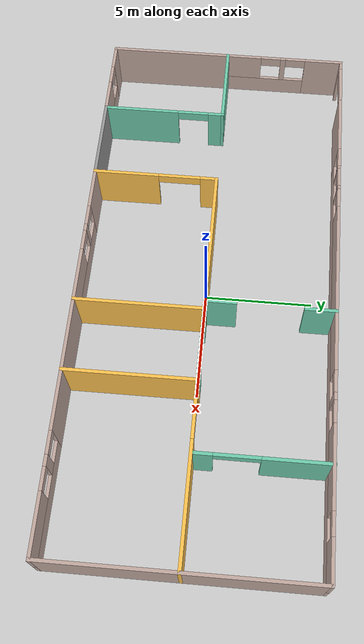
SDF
<sdf version="1.6">
 <world name="default">
  <model name="ground_plane">
   <static>1</static>
   <link name="link">
    <collision name="collision">
     <geometry><plane><normal>0 0 1</normal><size>100 100</size></plane></geometry>
     <surface><friction><ode><mu>100</mu><mu2>50</mu2></ode></friction></surface>
    </collision>
    <visual name="visual">
     <cast_shadows>0</cast_shadows>
     <geometry><plane><normal>0 0 1</normal><size>100 100</size></plane></geometry>
     <material>
      <script><uri>file://media/materials/scripts/gazebo.material</uri><name>Gazebo/Grey</name></script>
     </material>
    </visual>
   </link>
  </model>
  <model name="Building">
   <pose>0.0388 0.08075 0 0 -0 0</pose>
   <link name="Wall_0">
    <pose>-12.8748 2.91767 0 0 0 -1.5708</pose>
    <visual name="Wall_0_Visual_0">
     <pose>-2.03434 0 1.25 0 -0 0</pose>
     <geometry><box><size>1.93132 0.15 2.5</size></box></geometry>
     <material>
      <script><uri>file://media/materials/scripts/gazebo.material</uri><name>Gazebo/Grey</name></script>
      <ambient>0.760784 0.662745 0.627451 1</ambient>
     </material>
    </visual>
    <collision name="Wall_0_Collision_0">
     <geometry><box><size>1.93132 0.15 2.5</size></box></geometry>
     <pose>-2.03434 0 1.25 0 -0 0</pose>
    </collision>
    <visual name="Wall_0_Visual_1">
     <pose>0.965658 0 0.5 0 -0 0</pose>
     <geometry><box><size>4.06868 0.15 1</size></box></geometry>
     <material>
      <script><uri>file://media/materials/scripts/gazebo.material</uri><name>Gazebo/Grey</name></script>
      <ambient>0.760784 0.662745 0.627451 1</ambient>
     </material>
    </visual>
    <collision name="Wall_0_Collision_1">
     <geometry><box><size>4.06868 0.15 1</size></box></geometry>
     <pose>0.965658 0 0.5 0 -0 0</pose>
    </collision>
    <visual name="Wall_0_Visual_2">
     <pose>0.061576 0 1.75 0 -0 0</pose>
     <geometry><box><size>0.26052 0.15 1.5</size></box></geometry>
     <material>
      <script><uri>file://media/materials/scripts/gazebo.material</uri><name>Gazebo/Grey</name></script>
      <ambient>0.760784 0.662745 0.627451 1</ambient>
     </material>
    </visual>
    <collision name="Wall_0_Collision_2">
     <geometry><box><size>0.26052 0.15 1.5</size></box></geometry>
     <pose>0.061576 0 1.75 0 -0 0</pose>
    </collision>
    <visual name="Wall_0_Visual_3">
     <pose>2.09592 0 1.75 0 -0 0</pose>
     <geometry><box><size>1.80816 0.15 1.5</size></box></geometry>
     <material>
      <script><uri>file://media/materials/scripts/gazebo.material</uri><name>Gazebo/Grey</name></script>
      <ambient>0.760784 0.662745 0.627451 1</ambient>
     </material>
    </visual>
    <collision name="Wall_0_Collision_3">
     <geometry><box><size>1.80816 0.15 1.5</size></box></geometry>
     <pose>2.09592 0 1.75 0 -0 0</pose>
    </collision>
    <visual name="Wall_0_Visual_4">
     <pose>-0.568684 0 2.25 0 -0 0</pose>
     <geometry><box><size>1 0.15 0.5</size></box></geometry>
     <material>
      <script><uri>file://media/materials/scripts/gazebo.material</uri><name>Gazebo/Grey</name></script>
      <ambient>0.760784 0.662745 0.627451 1</ambient>
     </material>
    </visual>
    <collision name="Wall_0_Collision_4">
     <geometry><box><size>1 0.15 0.5</size></box></geometry>
     <pose>-0.568684 0 2.25 0 -0 0</pose>
    </collision>
    <visual name="Wall_0_Visual_5">
     <pose>0.691837 0 2.25 0 -0 0</pose>
     <geometry><box><size>1 0.15 0.5</size></box></geometry>
     <material>
      <script><uri>file://media/materials/scripts/gazebo.material</uri><name>Gazebo/Grey</name></script>
      <ambient>0.760784 0.662745 0.627451 1</ambient>
     </material>
    </visual>
    <collision name="Wall_0_Collision_5">
     <geometry><box><size>1 0.15 0.5</size></box></geometry>
     <pose>0.691837 0 2.25 0 -0 0</pose>
    </collision>
   </link>
   <link name="Wall_10">
    <collision name="Wall_10_Collision">
     <geometry><box><size>4 0.15 2.5</size></box></geometry>
     <pose>0 0 1.25 0 -0 0</pose>
    </collision>
    <visual name="Wall_10_Visual">
     <pose>0 0 1.25 0 -0 0</pose>
     <geometry><box><size>4 0.15 2.5</size></box></geometry>
     <material>
      <script><uri>file://media/materials/scripts/gazebo.material</uri><name>Gazebo/Grey</name></script>
      <ambient>1 1 1 1</ambient>
     </material>
    </visual>
    <pose>-7.1 -5.85736 0 0 0 -1.2e-05</pose>
   </link>
   <link name="Wall_12">
    <pose>-5.175 -2.93236 0 0 -0 1.57074</pose>
    <visual name="Wall_12_Visual_0">
     <pose>-1.42698 0 1.25 0 -0 0</pose>
     <geometry><box><size>3.14604 0.15 2.5</size></box></geometry>
     <material>
      <script><uri>file://media/materials/scripts/gazebo.material</uri><name>Gazebo/Grey</name></script>
      <ambient>1 0.764706 0.305882 1</ambient>
     </material>
    </visual>
    <collision name="Wall_12_Collision_0">
     <geometry><box><size>3.14604 0.15 2.5</size></box></geometry>
     <pose>-1.42698 0 1.25 0 -0 0</pose>
    </collision>
    <visual name="Wall_12_Visual_1">
     <pose>2.57302 0 1.25 0 -0 0</pose>
     <geometry><box><size>0.853958 0.15 2.5</size></box></geometry>
     <material>
      <script><uri>file://media/materials/scripts/gazebo.material</uri><name>Gazebo/Grey</name></script>
      <ambient>1 0.764706 0.305882 1</ambient>
     </material>
    </visual>
    <collision name="Wall_12_Collision_1">
     <geometry><box><size>0.853958 0.15 2.5</size></box></geometry>
     <pose>2.57302 0 1.25 0 -0 0</pose>
    </collision>
    <visual name="Wall_12_Visual_2">
     <pose>1.14604 0 2.25 0 -0 0</pose>
     <geometry><box><size>2 0.15 0.5</size></box></geometry>
     <material>
      <script><uri>file://media/materials/scripts/gazebo.material</uri><name>Gazebo/Grey</name></script>
      <ambient>1 0.764706 0.305882 1</ambient>
     </material>
    </visual>
    <collision name="Wall_12_Collision_2">
     <geometry><box><size>2 0.15 0.5</size></box></geometry>
     <pose>1.14604 0 2.25 0 -0 0</pose>
    </collision>
   </link>
   <link name="Wall_14">
    <pose>-1.75018 -5.85738 0 0 -0 0</pose>
    <visual name="Wall_14_Visual_0">
     <pose>-2.46755 0 1.25 0 -0 0</pose>
     <geometry><box><size>2.0649 0.15 2.5</size></box></geometry>
     <material>
      <script><uri>file://media/materials/scripts/gazebo.material</uri><name>Gazebo/Grey</name></script>
      <ambient>0.760784 0.662745 0.627451 1</ambient>
     </material>
    </visual>
    <collision name="Wall_14_Collision_0">
     <geometry><box><size>2.0649 0.15 2.5</size></box></geometry>
     <pose>-2.46755 0 1.25 0 -0 0</pose>
    </collision>
    <visual name="Wall_14_Visual_1">
     <pose>1.03245 0 0.5 0 -0 0</pose>
     <geometry><box><size>4.93509 0.15 1</size></box></geometry>
     <material>
      <script><uri>file://media/materials/scripts/gazebo.material</uri><name>Gazebo/Grey</name></script>
      <ambient>0.760784 0.662745 0.627451 1</ambient>
     </material>
    </visual>
    <collision name="Wall_14_Collision_1">
     <geometry><box><size>4.93509 0.15 1</size></box></geometry>
     <pose>1.03245 0 0.5 0 -0 0</pose>
    </collision>
    <visual name="Wall_14_Visual_2">
     <pose>-0.267578 0 1.75 0 -0 0</pose>
     <geometry><box><size>0.335034 0.15 1.5</size></box></geometry>
     <material>
      <script><uri>file://media/materials/scripts/gazebo.material</uri><name>Gazebo/Grey</name></script>
      <ambient>0.760784 0.662745 0.627451 1</ambient>
     </material>
    </visual>
    <collision name="Wall_14_Collision_2">
     <geometry><box><size>0.335034 0.15 1.5</size></box></geometry>
     <pose>-0.267578 0 1.75 0 -0 0</pose>
    </collision>
    <visual name="Wall_14_Visual_3">
     <pose>2.19997 0 1.75 0 -0 0</pose>
     <geometry><box><size>2.60006 0.15 1.5</size></box></geometry>
     <material>
      <script><uri>file://media/materials/scripts/gazebo.material</uri><name>Gazebo/Grey</name></script>
      <ambient>0.760784 0.662745 0.627451 1</ambient>
     </material>
    </visual>
    <collision name="Wall_14_Collision_3">
     <geometry><box><size>2.60006 0.15 1.5</size></box></geometry>
     <pose>2.19997 0 1.75 0 -0 0</pose>
    </collision>
    <visual name="Wall_14_Visual_4">
     <pose>-0.935095 0 2.25 0 -0 0</pose>
     <geometry><box><size>1 0.15 0.5</size></box></geometry>
     <material>
      <script><uri>file://media/materials/scripts/gazebo.material</uri><name>Gazebo/Grey</name></script>
      <ambient>0.760784 0.662745 0.627451 1</ambient>
     </material>
    </visual>
    <collision name="Wall_14_Collision_4">
     <geometry><box><size>1 0.15 0.5</size></box></geometry>
     <pose>-0.935095 0 2.25 0 -0 0</pose>
    </collision>
    <visual name="Wall_14_Visual_5">
     <pose>0.399939 0 2.25 0 -0 0</pose>
     <geometry><box><size>1 0.15 0.5</size></box></geometry>
     <material>
      <script><uri>file://media/materials/scripts/gazebo.material</uri><name>Gazebo/Grey</name></script>
      <ambient>0.760784 0.662745 0.627451 1</ambient>
     </material>
    </visual>
    <collision name="Wall_14_Collision_5">
     <geometry><box><size>1 0.15 0.5</size></box></geometry>
     <pose>0.399939 0 2.25 0 -0 0</pose>
    </collision>
   </link>
   <link name="Wall_16">
    <collision name="Wall_16_Collision">
     <geometry><box><size>6 0.15 2.5</size></box></geometry>
     <pose>0 0 1.25 0 -0 0</pose>
    </collision>
    <visual name="Wall_16_Visual">
     <pose>0 0 1.25 0 -0 0</pose>
     <geometry><box><size>6 0.15 2.5</size></box></geometry>
     <material>
      <script><uri>file://media/materials/scripts/gazebo.material</uri><name>Gazebo/Grey</name></script>
      <ambient>1 0.764706 0.305882 1</ambient>
     </material>
    </visual>
    <pose>1.67482 -2.93238 0 0 -0 1.5708</pose>
   </link>
   <link name="Wall_18">
    <collision name="Wall_18_Collision">
     <geometry><box><size>7 0.15 2.5</size></box></geometry>
     <pose>0 0 1.25 0 -0 0</pose>
    </collision>
    <visual name="Wall_18_Visual">
     <pose>0 0 1.25 0 -0 0</pose>
     <geometry><box><size>7 0.15 2.5</size></box></geometry>
     <material>
      <script><uri>file://media/materials/scripts/gazebo.material</uri><name>Gazebo/Grey</name></script>
      <ambient>1 0.764706 0.305882 1</ambient>
     </material>
    </visual>
    <pose>-1.75 -0.007356 0 0 0 -7e-06</pose>
   </link>
   <link name="Wall_2">
    <collision name="Wall_2_Collision">
     <geometry><box><size>6 0.15 2.5</size></box></geometry>
     <pose>0 0 1.25 0 -0 0</pose>
    </collision>
    <visual name="Wall_2_Visual">
     <pose>0 0 1.25 0 -0 0</pose>
     <geometry><box><size>6 0.15 2.5</size></box></geometry>
     <material>
      <script><uri>file://media/materials/scripts/gazebo.material</uri><name>Gazebo/Grey</name></script>
      <ambient>0.760784 0.662745 0.627451 1</ambient>
     </material>
    </visual>
    <pose>-12.8748 -2.93233 0 0 0 -1.5708</pose>
   </link>
   <link name="Wall_20">
    <pose>3.34982 -0.007379 0 0 -0 0</pose>
    <visual name="Wall_20_Visual_0">
     <pose>-1.403 0 1.25 0 -0 0</pose>
     <geometry><box><size>0.693999 0.15 2.5</size></box></geometry>
     <material>
      <script><uri>file://media/materials/scripts/gazebo.material</uri><name>Gazebo/Grey</name></script>
      <ambient>0.435294 0.796078 0.67451 1</ambient>
     </material>
    </visual>
    <collision name="Wall_20_Collision_0">
     <geometry><box><size>0.693999 0.15 2.5</size></box></geometry>
     <pose>-1.403 0 1.25 0 -0 0</pose>
    </collision>
    <visual name="Wall_20_Visual_1">
     <pose>1.347 0 1.25 0 -0 0</pose>
     <geometry><box><size>0.806001 0.15 2.5</size></box></geometry>
     <material>
      <script><uri>file://media/materials/scripts/gazebo.material</uri><name>Gazebo/Grey</name></script>
      <ambient>0.435294 0.796078 0.67451 1</ambient>
     </material>
    </visual>
    <collision name="Wall_20_Collision_1">
     <geometry><box><size>0.806001 0.15 2.5</size></box></geometry>
     <pose>1.347 0 1.25 0 -0 0</pose>
    </collision>
    <visual name="Wall_20_Visual_2">
     <pose>-0.056001 0 2.25 0 -0 0</pose>
     <geometry><box><size>2 0.15 0.5</size></box></geometry>
     <material>
      <script><uri>file://media/materials/scripts/gazebo.material</uri><name>Gazebo/Grey</name></script>
      <ambient>0.435294 0.796078 0.67451 1</ambient>
     </material>
    </visual>
    <collision name="Wall_20_Collision_2">
     <geometry><box><size>2 0.15 0.5</size></box></geometry>
     <pose>-0.056001 0 2.25 0 -0 0</pose>
    </collision>
   </link>
   <link name="Wall_23">
    <collision name="Wall_23_Collision">
     <geometry><box><size>3.5 0.15 2.5</size></box></geometry>
     <pose>0 0 1.25 0 -0 0</pose>
    </collision>
    <visual name="Wall_23_Visual">
     <pose>0 0 1.25 0 -0 0</pose>
     <geometry><box><size>3.5 0.15 2.5</size></box></geometry>
     <material>
      <script><uri>file://media/materials/scripts/gazebo.material</uri><name>Gazebo/Grey</name></script>
      <ambient>0.760784 0.662745 0.627451 1</ambient>
     </material>
    </visual>
    <pose>3.34982 -5.85738 0 0 -0 0</pose>
   </link>
   <link name="Wall_24">
    <collision name="Wall_24_Collision">
     <geometry><box><size>6 0.15 2.5</size></box></geometry>
     <pose>0 0 1.25 0 -0 0</pose>
    </collision>
    <visual name="Wall_24_Visual">
     <pose>0 0 1.25 0 -0 0</pose>
     <geometry><box><size>6 0.15 2.5</size></box></geometry>
     <material>
      <script><uri>file://media/materials/scripts/gazebo.material</uri><name>Gazebo/Grey</name></script>
      <ambient>1 0.764706 0.305882 1</ambient>
     </material>
    </visual>
    <pose>5.02482 -2.93238 0 0 -0 1.5708</pose>
   </link>
   <link name="Wall_29">
    <pose>8.94982 -5.85738 0 0 -0 0</pose>
    <visual name="Wall_29_Visual_0">
     <pose>-2.60604 0 1.25 0 -0 0</pose>
     <geometry><box><size>2.78791 0.15 2.5</size></box></geometry>
     <material>
      <script><uri>file://media/materials/scripts/gazebo.material</uri><name>Gazebo/Grey</name></script>
      <ambient>0.760784 0.662745 0.627451 1</ambient>
     </material>
    </visual>
    <collision name="Wall_29_Collision_0">
     <geometry><box><size>2.78791 0.15 2.5</size></box></geometry>
     <pose>-2.60604 0 1.25 0 -0 0</pose>
    </collision>
    <visual name="Wall_29_Visual_1">
     <pose>1.39396 0 0.5 0 -0 0</pose>
     <geometry><box><size>5.21209 0.15 1</size></box></geometry>
     <material>
      <script><uri>file://media/materials/scripts/gazebo.material</uri><name>Gazebo/Grey</name></script>
      <ambient>0.760784 0.662745 0.627451 1</ambient>
     </material>
    </visual>
    <collision name="Wall_29_Collision_1">
     <geometry><box><size>5.21209 0.15 1</size></box></geometry>
     <pose>1.39396 0 0.5 0 -0 0</pose>
    </collision>
    <visual name="Wall_29_Visual_2">
     <pose>0.036339 0 1.75 0 -0 0</pose>
     <geometry><box><size>0.496857 0.15 1.5</size></box></geometry>
     <material>
      <script><uri>file://media/materials/scripts/gazebo.material</uri><name>Gazebo/Grey</name></script>
      <ambient>0.760784 0.662745 0.627451 1</ambient>
     </material>
    </visual>
    <collision name="Wall_29_Collision_2">
     <geometry><box><size>0.496857 0.15 1.5</size></box></geometry>
     <pose>0.036339 0 1.75 0 -0 0</pose>
    </collision>
    <visual name="Wall_29_Visual_3">
     <pose>2.64238 0 1.75 0 -0 0</pose>
     <geometry><box><size>2.71523 0.15 1.5</size></box></geometry>
     <material>
      <script><uri>file://media/materials/scripts/gazebo.material</uri><name>Gazebo/Grey</name></script>
      <ambient>0.760784 0.662745 0.627451 1</ambient>
     </material>
    </visual>
    <collision name="Wall_29_Collision_3">
     <geometry><box><size>2.71523 0.15 1.5</size></box></geometry>
     <pose>2.64238 0 1.75 0 -0 0</pose>
    </collision>
    <visual name="Wall_29_Visual_4">
     <pose>-0.71209 0 2.25 0 -0 0</pose>
     <geometry><box><size>1 0.15 0.5</size></box></geometry>
     <material>
      <script><uri>file://media/materials/scripts/gazebo.material</uri><name>Gazebo/Grey</name></script>
      <ambient>0.760784 0.662745 0.627451 1</ambient>
     </material>
    </visual>
    <collision name="Wall_29_Collision_4">
     <geometry><box><size>1 0.15 0.5</size></box></geometry>
     <pose>-0.71209 0 2.25 0 -0 0</pose>
    </collision>
    <visual name="Wall_29_Visual_5">
     <pose>0.784767 0 2.25 0 -0 0</pose>
     <geometry><box><size>1 0.15 0.5</size></box></geometry>
     <material>
      <script><uri>file://media/materials/scripts/gazebo.material</uri><name>Gazebo/Grey</name></script>
      <ambient>0.760784 0.662745 0.627451 1</ambient>
     </material>
    </visual>
    <collision name="Wall_29_Collision_5">
     <geometry><box><size>1 0.15 0.5</size></box></geometry>
     <pose>0.784767 0 2.25 0 -0 0</pose>
    </collision>
   </link>
   <link name="Wall_31">
    <collision name="Wall_31_Collision">
     <geometry><box><size>6 0.15 2.5</size></box></geometry>
     <pose>0 0 1.25 0 -0 0</pose>
    </collision>
    <visual name="Wall_31_Visual">
     <pose>0 0 1.25 0 -0 0</pose>
     <geometry><box><size>6 0.15 2.5</size></box></geometry>
     <material>
      <script><uri>file://media/materials/scripts/gazebo.material</uri><name>Gazebo/Grey</name></script>
      <ambient>0.760784 0.662745 0.627451 1</ambient>
     </material>
    </visual>
    <pose>12.8748 -2.93238 0 0 -0 1.5708</pose>
   </link>
   <link name="Wall_33">
    <pose>8.94982 -0.007379 0 0 -0 3.14159</pose>
    <visual name="Wall_33_Visual_0">
     <pose>-1.3254 0 1.25 0 -0 0</pose>
     <geometry><box><size>5.3492 0.15 2.5</size></box></geometry>
     <material>
      <script><uri>file://media/materials/scripts/gazebo.material</uri><name>Gazebo/Grey</name></script>
      <ambient>1 0.764706 0.305882 1</ambient>
     </material>
    </visual>
    <collision name="Wall_33_Collision_0">
     <geometry><box><size>5.3492 0.15 2.5</size></box></geometry>
     <pose>-1.3254 0 1.25 0 -0 0</pose>
    </collision>
    <visual name="Wall_33_Visual_1">
     <pose>3.6746 0 1.25 0 -0 0</pose>
     <geometry><box><size>0.650803 0.15 2.5</size></box></geometry>
     <material>
      <script><uri>file://media/materials/scripts/gazebo.material</uri><name>Gazebo/Grey</name></script>
      <ambient>1 0.764706 0.305882 1</ambient>
     </material>
    </visual>
    <collision name="Wall_33_Collision_1">
     <geometry><box><size>0.650803 0.15 2.5</size></box></geometry>
     <pose>3.6746 0 1.25 0 -0 0</pose>
    </collision>
    <visual name="Wall_33_Visual_2">
     <pose>2.3492 0 2.25 0 -0 0</pose>
     <geometry><box><size>2 0.15 0.5</size></box></geometry>
     <material>
      <script><uri>file://media/materials/scripts/gazebo.material</uri><name>Gazebo/Grey</name></script>
      <ambient>1 0.764706 0.305882 1</ambient>
     </material>
    </visual>
    <collision name="Wall_33_Collision_2">
     <geometry><box><size>2 0.15 0.5</size></box></geometry>
     <pose>2.3492 0 2.25 0 -0 0</pose>
    </collision>
   </link>
   <link name="Wall_37">
    <collision name="Wall_37_Collision">
     <geometry><box><size>6 0.15 2.5</size></box></geometry>
     <pose>0 0 1.25 0 -0 0</pose>
    </collision>
    <visual name="Wall_37_Visual">
     <pose>0 0 1.25 0 -0 0</pose>
     <geometry><box><size>6 0.15 2.5</size></box></geometry>
     <material>
      <script><uri>file://media/materials/scripts/gazebo.material</uri><name>Gazebo/Grey</name></script>
      <ambient>0.760784 0.662745 0.627451 1</ambient>
     </material>
    </visual>
    <pose>12.8748 2.91762 0 0 -0 1.5708</pose>
   </link>
   <link name="Wall_39">
    <pose>0 5.84264 0 0 0 -2e-06</pose>
    <visual name="Wall_39_Visual_0">
     <pose>-12.6963 0 1.25 0 -0 0</pose>
     <geometry><box><size>0.507003 0.15 2.5</size></box></geometry>
     <material>
      <script><uri>file://media/materials/scripts/gazebo.material</uri><name>Gazebo/Grey</name></script>
      <ambient>0.760784 0.662745 0.627451 1</ambient>
     </material>
    </visual>
    <collision name="Wall_39_Collision_0">
     <geometry><box><size>0.507003 0.15 2.5</size></box></geometry>
     <pose>-12.6963 0 1.25 0 -0 0</pose>
    </collision>
    <visual name="Wall_39_Visual_1">
     <pose>-8.93538 0 1.25 0 -0 0</pose>
     <geometry><box><size>3.01488 0.15 2.5</size></box></geometry>
     <material>
      <script><uri>file://media/materials/scripts/gazebo.material</uri><name>Gazebo/Grey</name></script>
      <ambient>0.760784 0.662745 0.627451 1</ambient>
     </material>
    </visual>
    <collision name="Wall_39_Collision_1">
     <geometry><box><size>3.01488 0.15 2.5</size></box></geometry>
     <pose>-8.93538 0 1.25 0 -0 0</pose>
    </collision>
    <visual name="Wall_39_Visual_2">
     <pose>2.76094 0 0.5 0 -0 0</pose>
     <geometry><box><size>20.3778 0.15 1</size></box></geometry>
     <material>
      <script><uri>file://media/materials/scripts/gazebo.material</uri><name>Gazebo/Grey</name></script>
      <ambient>0.760784 0.662745 0.627451 1</ambient>
     </material>
    </visual>
    <collision name="Wall_39_Collision_2">
     <geometry><box><size>20.3778 0.15 1</size></box></geometry>
     <pose>2.76094 0 0.5 0 -0 0</pose>
    </collision>
    <visual name="Wall_39_Visual_3">
     <pose>-6.3614 0 1.75 0 -0 0</pose>
     <geometry><box><size>0.133081 0.15 1.5</size></box></geometry>
     <material>
      <script><uri>file://media/materials/scripts/gazebo.material</uri><name>Gazebo/Grey</name></script>
      <ambient>0.760784 0.662745 0.627451 1</ambient>
     </material>
    </visual>
    <collision name="Wall_39_Collision_3">
     <geometry><box><size>0.133081 0.15 1.5</size></box></geometry>
     <pose>-6.3614 0 1.75 0 -0 0</pose>
    </collision>
    <visual name="Wall_39_Visual_4">
     <pose>-5.20894 0 1.75 0 -0 0</pose>
     <geometry><box><size>0.171834 0.15 1.5</size></box></geometry>
     <material>
      <script><uri>file://media/materials/scripts/gazebo.material</uri><name>Gazebo/Grey</name></script>
      <ambient>0.760784 0.662745 0.627451 1</ambient>
     </material>
    </visual>
    <collision name="Wall_39_Collision_4">
     <geometry><box><size>0.171834 0.15 1.5</size></box></geometry>
     <pose>-5.20894 0 1.75 0 -0 0</pose>
    </collision>
    <visual name="Wall_39_Visual_5">
     <pose>-0.013145 0 1.75 0 -0 0</pose>
     <geometry><box><size>8.21975 0.15 1.5</size></box></geometry>
     <material>
      <script><uri>file://media/materials/scripts/gazebo.material</uri><name>Gazebo/Grey</name></script>
      <ambient>0.760784 0.662745 0.627451 1</ambient>
     </material>
    </visual>
    <collision name="Wall_39_Collision_5">
     <geometry><box><size>8.21975 0.15 1.5</size></box></geometry>
     <pose>-0.013145 0 1.75 0 -0 0</pose>
    </collision>
    <visual name="Wall_39_Visual_6">
     <pose>5.26425 0 1.75 0 -0 0</pose>
     <geometry><box><size>0.335033 0.15 1.5</size></box></geometry>
     <material>
      <script><uri>file://media/materials/scripts/gazebo.material</uri><name>Gazebo/Grey</name></script>
      <ambient>0.760784 0.662745 0.627451 1</ambient>
     </material>
    </visual>
    <collision name="Wall_39_Collision_6">
     <geometry><box><size>0.335033 0.15 1.5</size></box></geometry>
     <pose>5.26425 0 1.75 0 -0 0</pose>
    </collision>
    <visual name="Wall_39_Visual_7">
     <pose>8.23773 0 1.75 0 -0 0</pose>
     <geometry><box><size>3.61194 0.15 1.5</size></box></geometry>
     <material>
      <script><uri>file://media/materials/scripts/gazebo.material</uri><name>Gazebo/Grey</name></script>
      <ambient>0.760784 0.662745 0.627451 1</ambient>
     </material>
    </visual>
    <collision name="Wall_39_Collision_7">
     <geometry><box><size>3.61194 0.15 1.5</size></box></geometry>
     <pose>8.23773 0 1.75 0 -0 0</pose>
    </collision>
    <visual name="Wall_39_Visual_8">
     <pose>11.9968 0 1.75 0 -0 0</pose>
     <geometry><box><size>1.90612 0.15 1.5</size></box></geometry>
     <material>
      <script><uri>file://media/materials/scripts/gazebo.material</uri><name>Gazebo/Grey</name></script>
      <ambient>0.760784 0.662745 0.627451 1</ambient>
     </material>
    </visual>
    <collision name="Wall_39_Collision_8">
     <geometry><box><size>1.90612 0.15 1.5</size></box></geometry>
     <pose>11.9968 0 1.75 0 -0 0</pose>
    </collision>
    <visual name="Wall_39_Visual_9">
     <pose>-11.4428 0 2.25 0 -0 0</pose>
     <geometry><box><size>2 0.15 0.5</size></box></geometry>
     <material>
      <script><uri>file://media/materials/scripts/gazebo.material</uri><name>Gazebo/Grey</name></script>
      <ambient>0.760784 0.662745 0.627451 1</ambient>
     </material>
    </visual>
    <collision name="Wall_39_Collision_9">
     <geometry><box><size>2 0.15 0.5</size></box></geometry>
     <pose>-11.4428 0 2.25 0 -0 0</pose>
    </collision>
    <visual name="Wall_39_Visual_10">
     <pose>-6.92794 0 2.25 0 -0 0</pose>
     <geometry><box><size>1 0.15 0.5</size></box></geometry>
     <material>
      <script><uri>file://media/materials/scripts/gazebo.material</uri><name>Gazebo/Grey</name></script>
      <ambient>0.760784 0.662745 0.627451 1</ambient>
     </material>
    </visual>
    <collision name="Wall_39_Collision_10">
     <geometry><box><size>1 0.15 0.5</size></box></geometry>
     <pose>-6.92794 0 2.25 0 -0 0</pose>
    </collision>
    <visual name="Wall_39_Visual_11">
     <pose>-5.79486 0 2.25 0 -0 0</pose>
     <geometry><box><size>1 0.15 0.5</size></box></geometry>
     <material>
      <script><uri>file://media/materials/scripts/gazebo.material</uri><name>Gazebo/Grey</name></script>
      <ambient>0.760784 0.662745 0.627451 1</ambient>
     </material>
    </visual>
    <collision name="Wall_39_Collision_11">
     <geometry><box><size>1 0.15 0.5</size></box></geometry>
     <pose>-5.79486 0 2.25 0 -0 0</pose>
    </collision>
    <visual name="Wall_39_Visual_12">
     <pose>-4.62302 0 2.25 0 -0 0</pose>
     <geometry><box><size>1 0.15 0.5</size></box></geometry>
     <material>
      <script><uri>file://media/materials/scripts/gazebo.material</uri><name>Gazebo/Grey</name></script>
      <ambient>0.760784 0.662745 0.627451 1</ambient>
     </material>
    </visual>
    <collision name="Wall_39_Collision_12">
     <geometry><box><size>1 0.15 0.5</size></box></geometry>
     <pose>-4.62302 0 2.25 0 -0 0</pose>
    </collision>
    <visual name="Wall_39_Visual_13">
     <pose>4.59673 0 2.25 0 -0 0</pose>
     <geometry><box><size>1 0.15 0.5</size></box></geometry>
     <material>
      <script><uri>file://media/materials/scripts/gazebo.material</uri><name>Gazebo/Grey</name></script>
      <ambient>0.760784 0.662745 0.627451 1</ambient>
     </material>
    </visual>
    <collision name="Wall_39_Collision_13">
     <geometry><box><size>1 0.15 0.5</size></box></geometry>
     <pose>4.59673 0 2.25 0 -0 0</pose>
    </collision>
    <visual name="Wall_39_Visual_14">
     <pose>5.93177 0 2.25 0 -0 0</pose>
     <geometry><box><size>1 0.15 0.5</size></box></geometry>
     <material>
      <script><uri>file://media/materials/scripts/gazebo.material</uri><name>Gazebo/Grey</name></script>
      <ambient>0.760784 0.662745 0.627451 1</ambient>
     </material>
    </visual>
    <collision name="Wall_39_Collision_14">
     <geometry><box><size>1 0.15 0.5</size></box></geometry>
     <pose>5.93177 0 2.25 0 -0 0</pose>
    </collision>
    <visual name="Wall_39_Visual_15">
     <pose>10.5437 0 2.25 0 -0 0</pose>
     <geometry><box><size>1 0.15 0.5</size></box></geometry>
     <material>
      <script><uri>file://media/materials/scripts/gazebo.material</uri><name>Gazebo/Grey</name></script>
      <ambient>0.760784 0.662745 0.627451 1</ambient>
     </material>
    </visual>
    <collision name="Wall_39_Collision_15">
     <geometry><box><size>1 0.15 0.5</size></box></geometry>
     <pose>10.5437 0 2.25 0 -0 0</pose>
    </collision>
   </link>
   <link name="Wall_4">
    <pose>-10.9498 -5.85733 0 0 -0 0</pose>
    <visual name="Wall_4_Visual_0">
     <pose>-1.34533 0 1.25 0 -0 0</pose>
     <geometry><box><size>1.30933 0.15 2.5</size></box></geometry>
     <material>
      <script><uri>file://media/materials/scripts/gazebo.material</uri><name>Gazebo/Grey</name></script>
      <ambient>0.760784 0.662745 0.627451 1</ambient>
     </material>
    </visual>
    <collision name="Wall_4_Collision_0">
     <geometry><box><size>1.30933 0.15 2.5</size></box></geometry>
     <pose>-1.34533 0 1.25 0 -0 0</pose>
    </collision>
    <visual name="Wall_4_Visual_1">
     <pose>0.654667 0 0.5 0 -0 0</pose>
     <geometry><box><size>2.69067 0.15 1</size></box></geometry>
     <material>
      <script><uri>file://media/materials/scripts/gazebo.material</uri><name>Gazebo/Grey</name></script>
      <ambient>0.760784 0.662745 0.627451 1</ambient>
     </material>
    </visual>
    <collision name="Wall_4_Collision_1">
     <geometry><box><size>2.69067 0.15 1</size></box></geometry>
     <pose>0.654667 0 0.5 0 -0 0</pose>
    </collision>
    <visual name="Wall_4_Visual_2">
     <pose>1.15467 0 1.75 0 -0 0</pose>
     <geometry><box><size>1.69067 0.15 1.5</size></box></geometry>
     <material>
      <script><uri>file://media/materials/scripts/gazebo.material</uri><name>Gazebo/Grey</name></script>
      <ambient>0.760784 0.662745 0.627451 1</ambient>
     </material>
    </visual>
    <collision name="Wall_4_Collision_2">
     <geometry><box><size>1.69067 0.15 1.5</size></box></geometry>
     <pose>1.15467 0 1.75 0 -0 0</pose>
    </collision>
    <visual name="Wall_4_Visual_3">
     <pose>-0.190666 0 2.25 0 -0 0</pose>
     <geometry><box><size>1 0.15 0.5</size></box></geometry>
     <material>
      <script><uri>file://media/materials/scripts/gazebo.material</uri><name>Gazebo/Grey</name></script>
      <ambient>0.760784 0.662745 0.627451 1</ambient>
     </material>
    </visual>
    <collision name="Wall_4_Collision_3">
     <geometry><box><size>1 0.15 0.5</size></box></geometry>
     <pose>-0.190666 0 2.25 0 -0 0</pose>
    </collision>
   </link>
   <link name="Wall_41">
    <collision name="Wall_41_Collision">
     <geometry><box><size>1.5 0.15 2.5</size></box></geometry>
     <pose>0 0 1.25 0 -0 0</pose>
    </collision>
    <visual name="Wall_41_Visual">
     <pose>0 0 1.25 0 -0 0</pose>
     <geometry><box><size>1.5 0.15 2.5</size></box></geometry>
     <material>
      <script><uri>file://media/materials/scripts/gazebo.material</uri><name>Gazebo/Grey</name></script>
      <ambient>0.435294 0.796078 0.67451 1</ambient>
     </material>
    </visual>
    <pose>1.2911 0.669666 0 0 -0 1.5708</pose>
   </link>
   <link name="Wall_43">
    <collision name="Wall_43_Collision">
     <geometry><box><size>1.5 0.15 2.5</size></box></geometry>
     <pose>0 0 1.25 0 -0 0</pose>
    </collision>
    <visual name="Wall_43_Visual">
     <pose>0 0 1.25 0 -0 0</pose>
     <geometry><box><size>1.5 0.15 2.5</size></box></geometry>
     <material>
      <script><uri>file://media/materials/scripts/gazebo.material</uri><name>Gazebo/Grey</name></script>
      <ambient>0.435294 0.796078 0.67451 1</ambient>
     </material>
    </visual>
    <pose>1.32628 5.15934 0 0 0 -1.5708</pose>
   </link>
   <link name="Wall_45">
    <pose>8.17731 2.93238 0 0 -0 1.5708</pose>
    <visual name="Wall_45_Visual_0">
     <pose>-2.51976 0 1.25 0 -0 0</pose>
     <geometry><box><size>0.960478 0.15 2.5</size></box></geometry>
     <material>
      <script><uri>file://media/materials/scripts/gazebo.material</uri><name>Gazebo/Grey</name></script>
      <ambient>0.435294 0.796078 0.67451 1</ambient>
     </material>
    </visual>
    <collision name="Wall_45_Collision_0">
     <geometry><box><size>0.960478 0.15 2.5</size></box></geometry>
     <pose>-2.51976 0 1.25 0 -0 0</pose>
    </collision>
    <visual name="Wall_45_Visual_1">
     <pose>1.48024 0 1.25 0 -0 0</pose>
     <geometry><box><size>3.03952 0.15 2.5</size></box></geometry>
     <material>
      <script><uri>file://media/materials/scripts/gazebo.material</uri><name>Gazebo/Grey</name></script>
      <ambient>0.435294 0.796078 0.67451 1</ambient>
     </material>
    </visual>
    <collision name="Wall_45_Collision_1">
     <geometry><box><size>3.03952 0.15 2.5</size></box></geometry>
     <pose>1.48024 0 1.25 0 -0 0</pose>
    </collision>
    <visual name="Wall_45_Visual_2">
     <pose>-1.03952 0 2.25 0 -0 0</pose>
     <geometry><box><size>2 0.15 0.5</size></box></geometry>
     <material>
      <script><uri>file://media/materials/scripts/gazebo.material</uri><name>Gazebo/Grey</name></script>
      <ambient>0.435294 0.796078 0.67451 1</ambient>
     </material>
    </visual>
    <collision name="Wall_45_Collision_2">
     <geometry><box><size>2 0.15 0.5</size></box></geometry>
     <pose>-1.03952 0 2.25 0 -0 0</pose>
    </collision>
   </link>
   <link name="Wall_6">
    <pose>-9.02482 -2.93233 0 0 -0 1.5708</pose>
    <visual name="Wall_6_Visual_0">
     <pose>-1.14251 0 1.25 0 -0 0</pose>
     <geometry><box><size>3.71499 0.15 2.5</size></box></geometry>
     <material>
      <script><uri>file://media/materials/scripts/gazebo.material</uri><name>Gazebo/Grey</name></script>
      <ambient>0.435294 0.796078 0.67451 1</ambient>
     </material>
    </visual>
    <collision name="Wall_6_Collision_0">
     <geometry><box><size>3.71499 0.15 2.5</size></box></geometry>
     <pose>-1.14251 0 1.25 0 -0 0</pose>
    </collision>
    <visual name="Wall_6_Visual_1">
     <pose>2.6075 0 1.25 0 -0 0</pose>
     <geometry><box><size>0.78501 0.15 2.5</size></box></geometry>
     <material>
      <script><uri>file://media/materials/scripts/gazebo.material</uri><name>Gazebo/Grey</name></script>
      <ambient>0.435294 0.796078 0.67451 1</ambient>
     </material>
    </visual>
    <collision name="Wall_6_Collision_1">
     <geometry><box><size>0.78501 0.15 2.5</size></box></geometry>
     <pose>2.6075 0 1.25 0 -0 0</pose>
    </collision>
    <visual name="Wall_6_Visual_2">
     <pose>1.46499 0 2.25 0 -0 0</pose>
     <geometry><box><size>1.5 0.15 0.5</size></box></geometry>
     <material>
      <script><uri>file://media/materials/scripts/gazebo.material</uri><name>Gazebo/Grey</name></script>
      <ambient>0.435294 0.796078 0.67451 1</ambient>
     </material>
    </visual>
    <collision name="Wall_6_Collision_2">
     <geometry><box><size>1.5 0.15 0.5</size></box></geometry>
     <pose>1.46499 0 2.25 0 -0 0</pose>
    </collision>
   </link>
   <link name="Wall_8">
    <collision name="Wall_8_Collision">
     <geometry><box><size>4 0.15 2.5</size></box></geometry>
     <pose>0 0 1.25 0 -0 0</pose>
    </collision>
    <visual name="Wall_8_Visual">
     <pose>0 0 1.25 0 -0 0</pose>
     <geometry><box><size>4 0.15 2.5</size></box></geometry>
     <material>
      <script><uri>file://media/materials/scripts/gazebo.material</uri><name>Gazebo/Grey</name></script>
      <ambient>0.435294 0.796078 0.67451 1</ambient>
     </material>
    </visual>
    <pose>-10.9498 -0.007333 0 0 -0 3.14159</pose>
   </link>
   <static>1</static>
  </model>
 </world>
</sdf>
